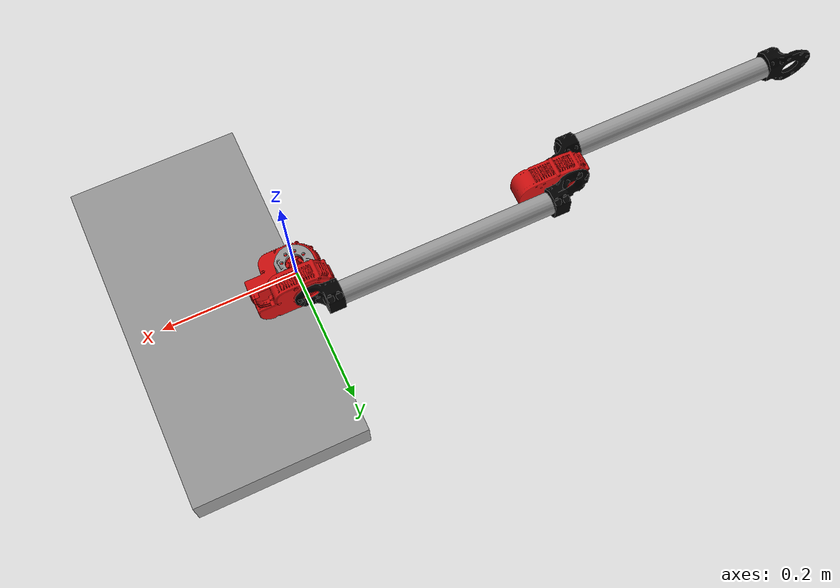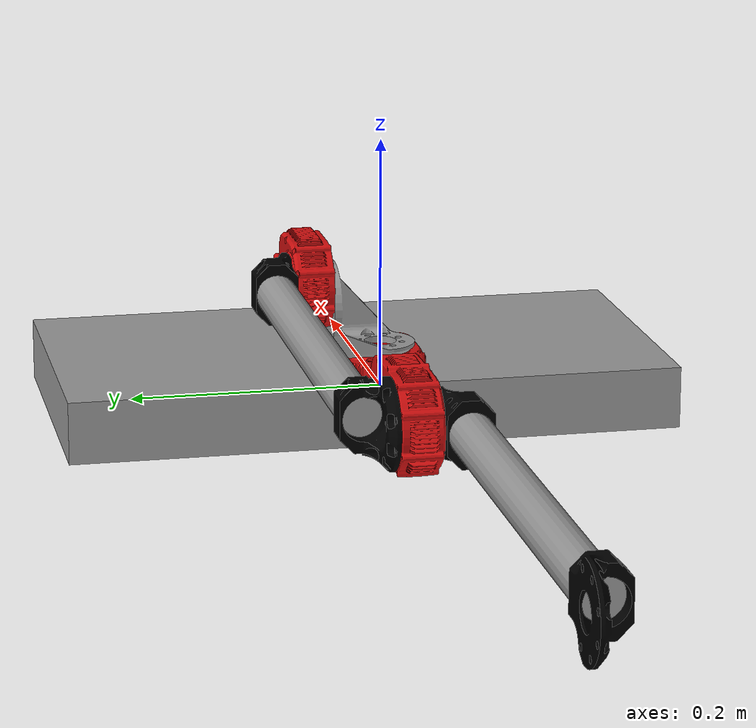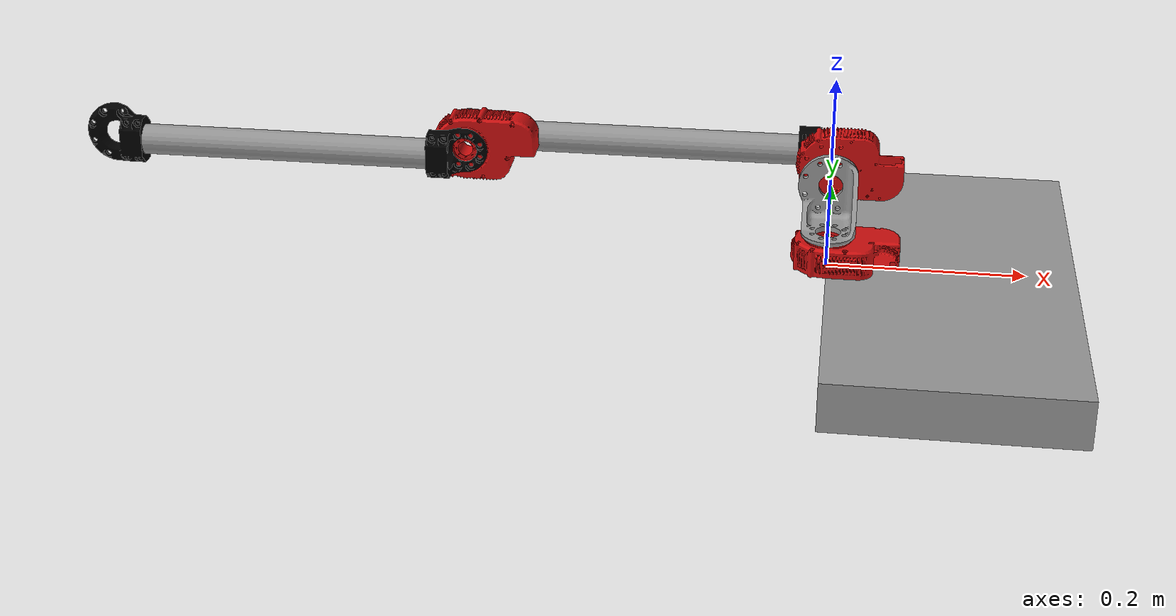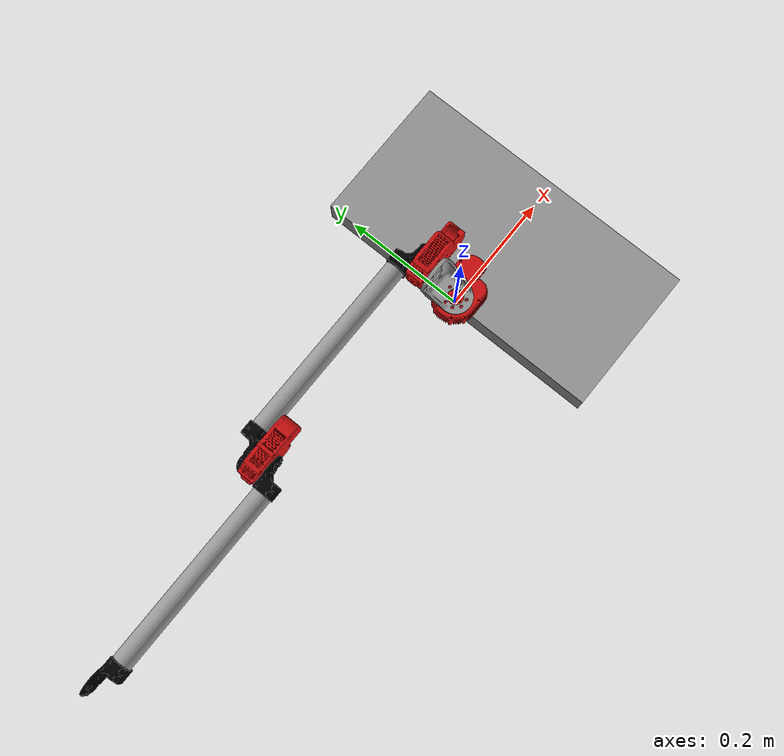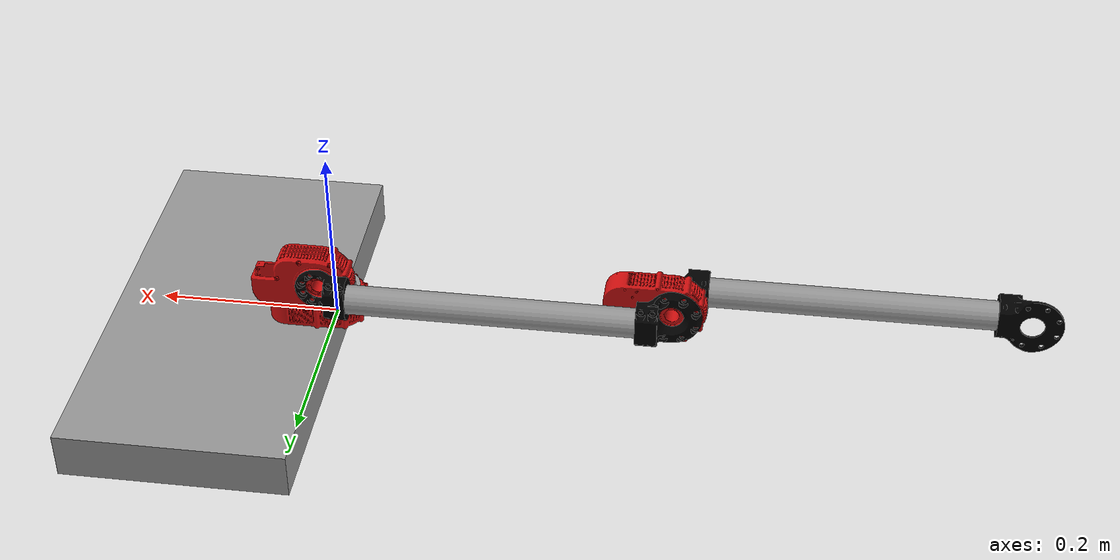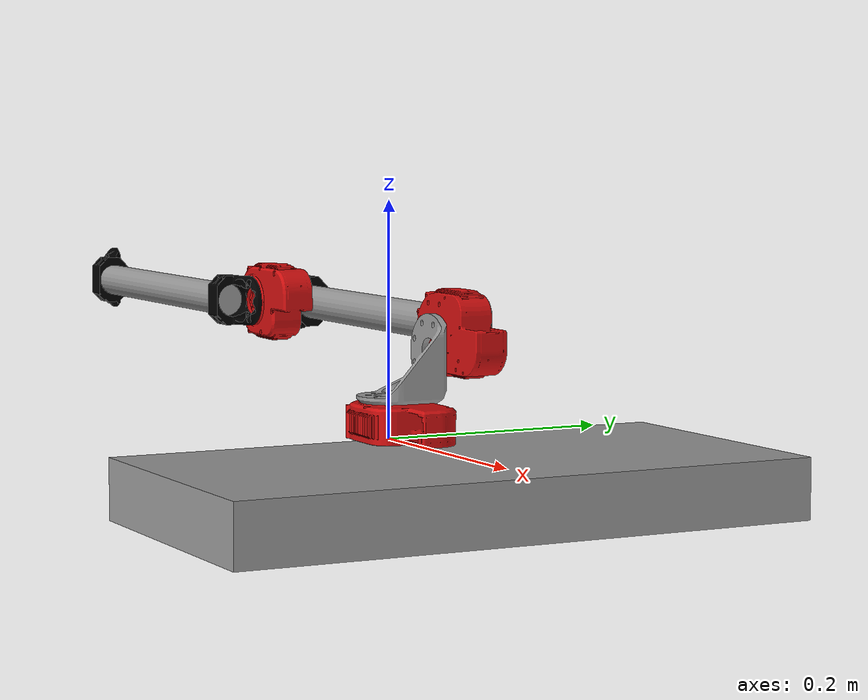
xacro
<?xml version="1.0"?>

<robot xmlns:xacro="http://www.ros.org/wiki/xacro" name="arm_demo">

  <!-- *************************** XACRO MACROS *************************** -->

  <xacro:property name="PI" value="3.1415926535897931" />

  <!-- load macros for modules -->
  <xacro:include filename="./x_series_common.xacro"/>
  <xacro:include filename="./x5.xacro"/>
  <xacro:include filename="./x_shoulder_bracket.xacro"/>
  <xacro:include filename="./x_wrist_bracket.xacro"/>
  <xacro:include filename="./x_tube_link.xacro"/>

  <!-- ************************* ROBOT DEFINITION ************************* -->

  <link name="world" />
  <joint name="world_joint"  type="fixed">
    <origin xyz="0 0 0" rpy="0 0 0" />
    <parent link="world"/>
    <child link="base"/>
  </joint>

  <!-- just for visualization: base post -->
  <link name="base">
    <visual>
      <origin xyz=".125 0 -.0254" rpy="0 0 0" />
      <geometry>
        <box size="0.25 0.5 0.0508" />
      </geometry>
      <xacro:silver_material/>
    </visual>
    <collision>
      <origin xyz=".125 0 -.0254" rpy="0 0 0" />
      <geometry>
        <box size="0.25 0.5 0.0508" />
      </geometry>
    </collision>
    <inertial>
      <origin xyz=".125 0 -.0254" rpy="0 0 0" />
      <mass value="1.0"/>
      <inertia ixx="1.0" ixy="0.0" ixz="0.0" iyy="1.0" iyz="0.0" izz="1.0"/>
    </inertial>
  </link>
  <joint name="base_base" type="fixed">
    <parent link="base"/>
    <child link="HEBI/base/INPUT_INTERFACE"/>
    <origin xyz="0 0 0" rpy="0 0 0"/>
  </joint>

  <!-- joints -->
  <xacro:x5 joint="HEBI/base" child="shoulder_bracket"/>
  <xacro:x_wrist_bracket name="shoulder_bracket" child="HEBI/shoulder"/>
  <xacro:x5 joint="HEBI/shoulder" child="shoulder_elbow"/>
  <xacro:x_tube_link name="shoulder_elbow" child="HEBI/elbow" length="0.33" twist="0"/>
  <xacro:x5 joint="HEBI/elbow" child="elbow_end"/>
  <xacro:x_tube_link name="elbow_end" child="end_effector" length="0.325" twist="0"/>

  <!-- test child...TODO CHANGE -->
  <link name="end_effector/INPUT_INTERFACE">
  </link>

  <gazebo reference="base">
    <selfCollide>true</selfCollide>
  </gazebo>
  <gazebo>
    <plugin name="gazebo_ros_control" filename="libgazebo_ros_control.so">
      <robotNamespace>/hebiros/x_demo</robotNamespace>
    </plugin>
  </gazebo>

</robot>

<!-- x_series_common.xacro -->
<robot xmlns:xacro="http://www.ros.org/wiki/xacro">
  <!-- define macros for colors: -->
  <xacro:macro name="red_material">
    <material name="red">
      <color rgba=".82 0.06 0.06 1"/>
    </material>
  </xacro:macro>
  <xacro:macro name="silver_material">
    <material name="silver">
      <color rgba="0.6 0.6 0.6 1"/>
    </material>
  </xacro:macro>
  <xacro:macro name="black_material">
    <material name="black">
      <color rgba="0 0 0 1"/>
    </material>
  </xacro:macro>
  <xacro:macro name="beige_material">
    <material name="beige">
      <color rgba="0.96 0.945 0.871 1"/>
    </material>
  </xacro:macro>

</robot>

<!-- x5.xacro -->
<robot xmlns:xacro="http://www.ros.org/wiki/xacro">
  <!-- NOTE: joint must match the name of the module -->
  <xacro:macro name="x5" params="joint child">
    <link name="${joint}/INPUT_INTERFACE">
      <visual>
        <origin xyz="0 0 0.0155" rpy="3.14157 0 0" />
        <geometry>
          <mesh filename="package://hebiros/meshes/x5.stl"/>
        </geometry>
        <xacro:red_material/>
      </visual>
      <collision>
        <origin xyz="0 0 0.0155" rpy="3.14157 0 0" />
        <geometry>
          <mesh filename="package://hebiros/meshes/x5.stl"/>
        </geometry>
      </collision>
      <inertial>
        <origin xyz="0 0 0.0155" rpy="3.14157 0 0" />
        <mass value="0.335"/>
        <inertia  ixx="1.0" ixy="0.0"  ixz="0.0"  iyy="1.0"  iyz="0.0"  izz="1.0"/>
      </inertial>
    </link>
    <joint name="${joint}" type="revolute">
      <parent link="${joint}/INPUT_INTERFACE"/>
      <child link="${child}/INPUT_INTERFACE"/>
      <origin xyz="0 0 0.031" rpy="0 0 0"/>
      <axis xyz="0 0 1"/>
      <limit effort="9.0" lower="-10.0" upper="10.0" velocity="2.208932"/>
      <dynamics damping="0.2" friction="0.2"/>
    </joint>
    <transmission name="${joint}/transmission">
    <type>transmission_interface/SimpleTransmission</type>
      <joint name="${joint}">
        <hardwareInterface>hardware_interface/EffortJointInterface</hardwareInterface>
      </joint>
      <actuator name="${joint}/actuator">
        <hardwareInterface>hardware_interface/EffortJointInterface</hardwareInterface>
        <mechanicalReduction>1</mechanicalReduction>
      </actuator>
    </transmission>
    <gazebo reference="${joint}/INPUT_INTERFACE">
      <selfCollide>true</selfCollide>
    </gazebo>
  </xacro:macro>
</robot>

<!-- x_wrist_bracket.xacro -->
<robot xmlns:xacro="http://www.ros.org/wiki/xacro">
  <xacro:macro name="x_wrist_bracket"
               params="name child">
  <link name="${name}/INPUT_INTERFACE">
    <visual>
      <origin xyz="0 0 0" rpy="1.57075 0 1.57075"/>
      <geometry>
        <mesh filename="package://hebiros/meshes/x_wrist.stl"/>
      </geometry>
      <xacro:silver_material/>
    </visual>
    <collision>
      <origin xyz="0 0 0" rpy="1.57075 0 1.57075"/>
      <geometry>
        <mesh filename="package://hebiros/meshes/x_wrist.stl"/>
      </geometry>
    </collision>
    <inertial>
      <origin xyz="0 0 0" rpy="1.57075 0 1.57075"/>
      <mass value="0.1"/>
      <inertia  ixx="1.0" ixy="0.0"  ixz="0.0"  iyy="1.0"  iyz="0.0"  izz="1.0"/>
    </inertial>
  </link>
  <joint name="${name}/OUTPUT_INTERFACE" type="fixed">
    <parent link="${name}/INPUT_INTERFACE"/>
    <child link="${child}/INPUT_INTERFACE"/>
    <origin xyz="0 .04235 .05715" rpy="-1.57075 0 0"/>
  </joint>
  <gazebo reference="${name}/INPUT_INTERFACE">
    <selfCollide>true</selfCollide>
  </gazebo>
  </xacro:macro>
</robot>

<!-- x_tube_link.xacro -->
<robot xmlns:xacro="http://www.ros.org/wiki/xacro">
  <!-- NOTE: joint must match the name of the module -->
  <xacro:macro name="x_tube_link" params="name child length twist">
    <link name="${name}/INPUT_INTERFACE">
      <visual>
        <origin xyz="-.04 .03 .0075" rpy="0 0 3.14157" />
        <geometry>
          <mesh filename="package://hebiros/meshes/x_output_bracket.stl"/>
        </geometry>
        <xacro:black_material/>
      </visual>
      <visual>
        <origin xyz="${-length/2-.0254} 0 .016075" rpy="0 1.57075 0" />
        <geometry>
          <cylinder length="${length}" radius=".015875" />
        </geometry>
        <xacro:silver_material/>
      </visual>
      <visual>
        <origin xyz="${-length-.0254} -.075 -.0125" rpy="1.57075 0 -1.57075" />
        <geometry>
          <mesh filename="package://hebiros/meshes/x_mounting_bracket.stl"/>
        </geometry>
        <xacro:black_material/>
      </visual>
      <collision>
        <origin xyz="-.04 .03 .0075" rpy="0 0 3.14157" />
        <geometry>
          <mesh filename="package://hebiros/meshes/x_output_bracket.stl"/>
        </geometry>
      </collision>
      <collision>
        <origin xyz="${-length/2-.0254} 0 .016075" rpy="0 1.57075 0" />
        <geometry>
          <cylinder length="${length}" radius=".015875" />
        </geometry>
      </collision>
      <collision>
        <origin xyz="${-length-.0254} -.075 -.0125" rpy="1.57075 0 -1.57075" />
        <geometry>
          <mesh filename="package://hebiros/meshes/x_mounting_bracket.stl"/>
        </geometry>
      </collision>
      <inertial>
        <origin xyz="-.04 .03 .0075" rpy="0 0 3.14157" />
        <mass value="0.01"/>
        <inertia  ixx="1.0" ixy="0.0"  ixz="0.0"  iyy="1.0"  iyz="0.0"  izz="1.0"/>
      </inertial>
      <inertial>
        <origin xyz="${-length/2-.0254} 0 .016075" rpy="0 1.57075 0" />
        <mass value="${length + 0.05}"/>
        <inertia  ixx="1.0" ixy="0.0"  ixz="0.0"  iyy="1.0"  iyz="0.0"  izz="1.0"/>
      </inertial>
      <inertial>
        <origin xyz="${-length-.0254} -.075 -.0125" rpy="1.57075 0 -1.57075" />
        <mass value="0.01"/>
        <inertia  ixx="1.0" ixy="0.0"  ixz="0.0"  iyy="1.0"  iyz="0.0"  izz="1.0"/>
      </inertial>
    </link>
    <joint name="${name}/OUTPUT_JOINT" type="fixed">
      <parent link="${name}/INPUT_INTERFACE"/>
      <child link="${child}/INPUT_INTERFACE"/>
      <origin xyz="${-length-.05} 0 0" rpy="3.14157 0 0"/>
    </joint>
    <gazebo reference="${name}/INPUT_INTERFACE">
      <selfCollide>true</selfCollide>
    </gazebo>
  </xacro:macro>
</robot>
